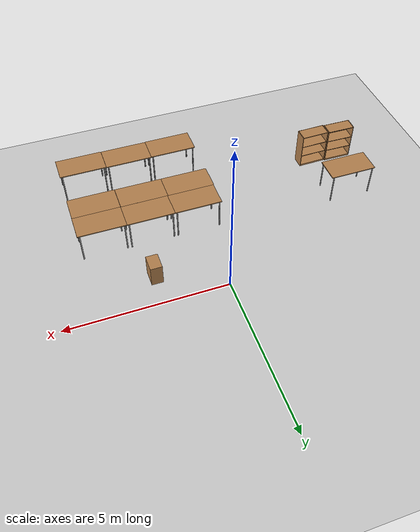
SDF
<sdf version="1.4">
 <world name="default">
  <model name="ground_plane">
   <static>1</static>
   <link name="link">
    <collision name="collision">
     <geometry><plane><normal>0 0 1</normal><size>100 100</size></plane></geometry>
     <surface><friction><ode><mu>100</mu><mu2>50</mu2></ode></friction></surface>
    </collision>
    <visual name="visual">
     <cast_shadows>0</cast_shadows>
     <geometry><plane><normal>0 0 1</normal><size>100 100</size></plane></geometry>
     <material>
      <script><uri>file://media/materials/scripts/gazebo.material</uri><name>Gazebo/Grey</name></script>
     </material>
    </visual>
    <velocity_decay><linear>0</linear><angular>0</angular></velocity_decay>
   </link>
  </model>
  <model name="bookshelf">
   <static>1</static>
   <link name="link">
    <inertial><mass>1</mass></inertial>
    <collision name="back">
     <pose>0 0.005 0.6 0 -0 0</pose>
     <geometry><box><size>0.9 0.01 1.2</size></box></geometry>
    </collision>
    <visual name="visual1">
     <pose>0 0.005 0.6 0 -0 0</pose>
     <geometry><box><size>0.9 0.01 1.2</size></box></geometry>
     <material>
      <script><uri>file://media/materials/scripts/gazebo.material</uri><name>Gazebo/Wood</name></script>
     </material>
    </visual>
    <collision name="left_side">
     <pose>0.45 -0.195 0.6 0 -0 0</pose>
     <geometry><box><size>0.02 0.4 1.2</size></box></geometry>
    </collision>
    <visual name="visual2">
     <pose>0.45 -0.195 0.6 0 -0 0</pose>
     <geometry><box><size>0.02 0.4 1.2</size></box></geometry>
     <material>
      <script><uri>file://media/materials/scripts/gazebo.material</uri><name>Gazebo/Wood</name></script>
     </material>
    </visual>
    <collision name="right_side">
     <pose>-0.45 -0.195 0.6 0 -0 0</pose>
     <geometry><box><size>0.02 0.4 1.2</size></box></geometry>
    </collision>
    <visual name="visual3">
     <pose>-0.45 -0.195 0.6 0 -0 0</pose>
     <geometry><box><size>0.02 0.4 1.2</size></box></geometry>
     <material>
      <script><uri>file://media/materials/scripts/gazebo.material</uri><name>Gazebo/Wood</name></script>
     </material>
    </visual>
    <collision name="bottom">
     <pose>0 -0.195 0.03 0 -0 0</pose>
     <geometry><box><size>0.88 0.4 0.06</size></box></geometry>
    </collision>
    <visual name="visual4">
     <pose>0 -0.195 0.03 0 -0 0</pose>
     <geometry><box><size>0.88 0.4 0.06</size></box></geometry>
     <material>
      <script><uri>file://media/materials/scripts/gazebo.material</uri><name>Gazebo/Wood</name></script>
     </material>
    </visual>
    <collision name="top">
     <pose>0 -0.195 1.19 0 -0 0</pose>
     <geometry><box><size>0.88 0.4 0.02</size></box></geometry>
    </collision>
    <visual name="visual5">
     <pose>0 -0.195 1.19 0 -0 0</pose>
     <geometry><box><size>0.88 0.4 0.02</size></box></geometry>
     <material>
      <script><uri>file://media/materials/scripts/gazebo.material</uri><name>Gazebo/Wood</name></script>
     </material>
    </visual>
    <collision name="low_shelf">
     <pose>0 -0.195 0.43 0 -0 0</pose>
     <geometry><box><size>0.88 0.4 0.02</size></box></geometry>
    </collision>
    <visual name="visual6">
     <pose>0 -0.195 0.43 0 -0 0</pose>
     <geometry><box><size>0.88 0.4 0.02</size></box></geometry>
     <material>
      <script><uri>file://media/materials/scripts/gazebo.material</uri><name>Gazebo/Wood</name></script>
     </material>
    </visual>
    <collision name="high_shelf">
     <pose>0 -0.195 0.8 0 -0 0</pose>
     <geometry><box><size>0.88 0.4 0.02</size></box></geometry>
    </collision>
    <visual name="visual7">
     <pose>0 -0.195 0.8 0 -0 0</pose>
     <geometry><box><size>0.88 0.4 0.02</size></box></geometry>
     <material>
      <script><uri>file://media/materials/scripts/gazebo.material</uri><name>Gazebo/Wood</name></script>
     </material>
    </visual>
    <velocity_decay><linear>0</linear><angular>0</angular></velocity_decay>
   </link>
   <pose>-5.47897 -4.4727 0 0 -0 3.12502</pose>
  </model>
  <model name="bookshelf_0">
   <static>1</static>
   <link name="link">
    <inertial><mass>1</mass></inertial>
    <collision name="back">
     <pose>0 0.005 0.6 0 -0 0</pose>
     <geometry><box><size>0.9 0.01 1.2</size></box></geometry>
    </collision>
    <visual name="visual1">
     <pose>0 0.005 0.6 0 -0 0</pose>
     <geometry><box><size>0.9 0.01 1.2</size></box></geometry>
     <material>
      <script><uri>file://media/materials/scripts/gazebo.material</uri><name>Gazebo/Wood</name></script>
     </material>
    </visual>
    <collision name="left_side">
     <pose>0.45 -0.195 0.6 0 -0 0</pose>
     <geometry><box><size>0.02 0.4 1.2</size></box></geometry>
    </collision>
    <visual name="visual2">
     <pose>0.45 -0.195 0.6 0 -0 0</pose>
     <geometry><box><size>0.02 0.4 1.2</size></box></geometry>
     <material>
      <script><uri>file://media/materials/scripts/gazebo.material</uri><name>Gazebo/Wood</name></script>
     </material>
    </visual>
    <collision name="right_side">
     <pose>-0.45 -0.195 0.6 0 -0 0</pose>
     <geometry><box><size>0.02 0.4 1.2</size></box></geometry>
    </collision>
    <visual name="visual3">
     <pose>-0.45 -0.195 0.6 0 -0 0</pose>
     <geometry><box><size>0.02 0.4 1.2</size></box></geometry>
     <material>
      <script><uri>file://media/materials/scripts/gazebo.material</uri><name>Gazebo/Wood</name></script>
     </material>
    </visual>
    <collision name="bottom">
     <pose>0 -0.195 0.03 0 -0 0</pose>
     <geometry><box><size>0.88 0.4 0.06</size></box></geometry>
    </collision>
    <visual name="visual4">
     <pose>0 -0.195 0.03 0 -0 0</pose>
     <geometry><box><size>0.88 0.4 0.06</size></box></geometry>
     <material>
      <script><uri>file://media/materials/scripts/gazebo.material</uri><name>Gazebo/Wood</name></script>
     </material>
    </visual>
    <collision name="top">
     <pose>0 -0.195 1.19 0 -0 0</pose>
     <geometry><box><size>0.88 0.4 0.02</size></box></geometry>
    </collision>
    <visual name="visual5">
     <pose>0 -0.195 1.19 0 -0 0</pose>
     <geometry><box><size>0.88 0.4 0.02</size></box></geometry>
     <material>
      <script><uri>file://media/materials/scripts/gazebo.material</uri><name>Gazebo/Wood</name></script>
     </material>
    </visual>
    <collision name="low_shelf">
     <pose>0 -0.195 0.43 0 -0 0</pose>
     <geometry><box><size>0.88 0.4 0.02</size></box></geometry>
    </collision>
    <visual name="visual6">
     <pose>0 -0.195 0.43 0 -0 0</pose>
     <geometry><box><size>0.88 0.4 0.02</size></box></geometry>
     <material>
      <script><uri>file://media/materials/scripts/gazebo.material</uri><name>Gazebo/Wood</name></script>
     </material>
    </visual>
    <collision name="high_shelf">
     <pose>0 -0.195 0.8 0 -0 0</pose>
     <geometry><box><size>0.88 0.4 0.02</size></box></geometry>
    </collision>
    <visual name="visual7">
     <pose>0 -0.195 0.8 0 -0 0</pose>
     <geometry><box><size>0.88 0.4 0.02</size></box></geometry>
     <material>
      <script><uri>file://media/materials/scripts/gazebo.material</uri><name>Gazebo/Wood</name></script>
     </material>
    </visual>
    <velocity_decay><linear>0</linear><angular>0</angular></velocity_decay>
   </link>
   <pose>-4.5364 -4.49607 0 0 0 -3.12092</pose>
  </model>
  <model name="table">
   <static>1</static>
   <link name="link">
    <collision name="surface">
     <pose>0 0 1 0 -0 0</pose>
     <geometry><box><size>1.5 0.8 0.03</size></box></geometry>
     <surface><friction><ode><mu>0.6</mu><mu2>0.6</mu2></ode></friction></surface>
    </collision>
    <visual name="visual1">
     <pose>0 0 1 0 -0 0</pose>
     <geometry><box><size>1.5 0.8 0.03</size></box></geometry>
     <material>
      <script><uri>file://media/materials/scripts/gazebo.material</uri><name>Gazebo/Wood</name></script>
     </material>
    </visual>
    <collision name="front_left_leg">
     <pose>0.68 0.38 0.5 0 -0 0</pose>
     <geometry><cylinder><radius>0.02</radius><length>1</length></cylinder></geometry>
    </collision>
    <visual name="front_left_leg">
     <pose>0.68 0.38 0.5 0 -0 0</pose>
     <geometry><cylinder><radius>0.02</radius><length>1</length></cylinder></geometry>
     <material>
      <script><uri>file://media/materials/scripts/gazebo.material</uri><name>Gazebo/Grey</name></script>
     </material>
    </visual>
    <collision name="front_right_leg">
     <pose>0.68 -0.38 0.5 0 -0 0</pose>
     <geometry><cylinder><radius>0.02</radius><length>1</length></cylinder></geometry>
    </collision>
    <visual name="front_right_leg">
     <pose>0.68 -0.38 0.5 0 -0 0</pose>
     <geometry><cylinder><radius>0.02</radius><length>1</length></cylinder></geometry>
     <material>
      <script><uri>file://media/materials/scripts/gazebo.material</uri><name>Gazebo/Grey</name></script>
     </material>
    </visual>
    <collision name="back_right_leg">
     <pose>-0.68 -0.38 0.5 0 -0 0</pose>
     <geometry><cylinder><radius>0.02</radius><length>1</length></cylinder></geometry>
    </collision>
    <visual name="back_right_leg">
     <pose>-0.68 -0.38 0.5 0 -0 0</pose>
     <geometry><cylinder><radius>0.02</radius><length>1</length></cylinder></geometry>
     <material>
      <script><uri>file://media/materials/scripts/gazebo.material</uri><name>Gazebo/Grey</name></script>
     </material>
    </visual>
    <collision name="back_left_leg">
     <pose>-0.68 0.38 0.5 0 -0 0</pose>
     <geometry><cylinder><radius>0.02</radius><length>1</length></cylinder></geometry>
    </collision>
    <visual name="back_left_leg">
     <pose>-0.68 0.38 0.5 0 -0 0</pose>
     <geometry><cylinder><radius>0.02</radius><length>1</length></cylinder></geometry>
     <material>
      <script><uri>file://media/materials/scripts/gazebo.material</uri><name>Gazebo/Grey</name></script>
     </material>
    </visual>
    <velocity_decay><linear>0</linear><angular>0</angular></velocity_decay>
   </link>
   <pose>3.14958 -3.576 0 0 -0 0</pose>
  </model>
  <model name="table_0">
   <static>1</static>
   <link name="link">
    <collision name="surface">
     <pose>0 0 1 0 -0 0</pose>
     <geometry><box><size>1.5 0.8 0.03</size></box></geometry>
     <surface><friction><ode><mu>0.6</mu><mu2>0.6</mu2></ode></friction></surface>
    </collision>
    <visual name="visual1">
     <pose>0 0 1 0 -0 0</pose>
     <geometry><box><size>1.5 0.8 0.03</size></box></geometry>
     <material>
      <script><uri>file://media/materials/scripts/gazebo.material</uri><name>Gazebo/Wood</name></script>
     </material>
    </visual>
    <collision name="front_left_leg">
     <pose>0.68 0.38 0.5 0 -0 0</pose>
     <geometry><cylinder><radius>0.02</radius><length>1</length></cylinder></geometry>
    </collision>
    <visual name="front_left_leg">
     <pose>0.68 0.38 0.5 0 -0 0</pose>
     <geometry><cylinder><radius>0.02</radius><length>1</length></cylinder></geometry>
     <material>
      <script><uri>file://media/materials/scripts/gazebo.material</uri><name>Gazebo/Grey</name></script>
     </material>
    </visual>
    <collision name="front_right_leg">
     <pose>0.68 -0.38 0.5 0 -0 0</pose>
     <geometry><cylinder><radius>0.02</radius><length>1</length></cylinder></geometry>
    </collision>
    <visual name="front_right_leg">
     <pose>0.68 -0.38 0.5 0 -0 0</pose>
     <geometry><cylinder><radius>0.02</radius><length>1</length></cylinder></geometry>
     <material>
      <script><uri>file://media/materials/scripts/gazebo.material</uri><name>Gazebo/Grey</name></script>
     </material>
    </visual>
    <collision name="back_right_leg">
     <pose>-0.68 -0.38 0.5 0 -0 0</pose>
     <geometry><cylinder><radius>0.02</radius><length>1</length></cylinder></geometry>
    </collision>
    <visual name="back_right_leg">
     <pose>-0.68 -0.38 0.5 0 -0 0</pose>
     <geometry><cylinder><radius>0.02</radius><length>1</length></cylinder></geometry>
     <material>
      <script><uri>file://media/materials/scripts/gazebo.material</uri><name>Gazebo/Grey</name></script>
     </material>
    </visual>
    <collision name="back_left_leg">
     <pose>-0.68 0.38 0.5 0 -0 0</pose>
     <geometry><cylinder><radius>0.02</radius><length>1</length></cylinder></geometry>
    </collision>
    <visual name="back_left_leg">
     <pose>-0.68 0.38 0.5 0 -0 0</pose>
     <geometry><cylinder><radius>0.02</radius><length>1</length></cylinder></geometry>
     <material>
      <script><uri>file://media/materials/scripts/gazebo.material</uri><name>Gazebo/Grey</name></script>
     </material>
    </visual>
    <velocity_decay><linear>0</linear><angular>0</angular></velocity_decay>
   </link>
   <pose>3.15246 -2.77618 0 0 -0 0</pose>
  </model>
  <model name="table_1">
   <static>1</static>
   <link name="link">
    <collision name="surface">
     <pose>0 0 1 0 -0 0</pose>
     <geometry><box><size>1.5 0.8 0.03</size></box></geometry>
     <surface><friction><ode><mu>0.6</mu><mu2>0.6</mu2></ode></friction></surface>
    </collision>
    <visual name="visual1">
     <pose>0 0 1 0 -0 0</pose>
     <geometry><box><size>1.5 0.8 0.03</size></box></geometry>
     <material>
      <script><uri>file://media/materials/scripts/gazebo.material</uri><name>Gazebo/Wood</name></script>
     </material>
    </visual>
    <collision name="front_left_leg">
     <pose>0.68 0.38 0.5 0 -0 0</pose>
     <geometry><cylinder><radius>0.02</radius><length>1</length></cylinder></geometry>
    </collision>
    <visual name="front_left_leg">
     <pose>0.68 0.38 0.5 0 -0 0</pose>
     <geometry><cylinder><radius>0.02</radius><length>1</length></cylinder></geometry>
     <material>
      <script><uri>file://media/materials/scripts/gazebo.material</uri><name>Gazebo/Grey</name></script>
     </material>
    </visual>
    <collision name="front_right_leg">
     <pose>0.68 -0.38 0.5 0 -0 0</pose>
     <geometry><cylinder><radius>0.02</radius><length>1</length></cylinder></geometry>
    </collision>
    <visual name="front_right_leg">
     <pose>0.68 -0.38 0.5 0 -0 0</pose>
     <geometry><cylinder><radius>0.02</radius><length>1</length></cylinder></geometry>
     <material>
      <script><uri>file://media/materials/scripts/gazebo.material</uri><name>Gazebo/Grey</name></script>
     </material>
    </visual>
    <collision name="back_right_leg">
     <pose>-0.68 -0.38 0.5 0 -0 0</pose>
     <geometry><cylinder><radius>0.02</radius><length>1</length></cylinder></geometry>
    </collision>
    <visual name="back_right_leg">
     <pose>-0.68 -0.38 0.5 0 -0 0</pose>
     <geometry><cylinder><radius>0.02</radius><length>1</length></cylinder></geometry>
     <material>
      <script><uri>file://media/materials/scripts/gazebo.material</uri><name>Gazebo/Grey</name></script>
     </material>
    </visual>
    <collision name="back_left_leg">
     <pose>-0.68 0.38 0.5 0 -0 0</pose>
     <geometry><cylinder><radius>0.02</radius><length>1</length></cylinder></geometry>
    </collision>
    <visual name="back_left_leg">
     <pose>-0.68 0.38 0.5 0 -0 0</pose>
     <geometry><cylinder><radius>0.02</radius><length>1</length></cylinder></geometry>
     <material>
      <script><uri>file://media/materials/scripts/gazebo.material</uri><name>Gazebo/Grey</name></script>
     </material>
    </visual>
    <velocity_decay><linear>0</linear><angular>0</angular></velocity_decay>
   </link>
   <pose>1.64385 -3.57049 0 0 -0 0</pose>
  </model>
  <model name="table_2">
   <static>1</static>
   <link name="link">
    <collision name="surface">
     <pose>0 0 1 0 -0 0</pose>
     <geometry><box><size>1.5 0.8 0.03</size></box></geometry>
     <surface><friction><ode><mu>0.6</mu><mu2>0.6</mu2></ode></friction></surface>
    </collision>
    <visual name="visual1">
     <pose>0 0 1 0 -0 0</pose>
     <geometry><box><size>1.5 0.8 0.03</size></box></geometry>
     <material>
      <script><uri>file://media/materials/scripts/gazebo.material</uri><name>Gazebo/Wood</name></script>
     </material>
    </visual>
    <collision name="front_left_leg">
     <pose>0.68 0.38 0.5 0 -0 0</pose>
     <geometry><cylinder><radius>0.02</radius><length>1</length></cylinder></geometry>
    </collision>
    <visual name="front_left_leg">
     <pose>0.68 0.38 0.5 0 -0 0</pose>
     <geometry><cylinder><radius>0.02</radius><length>1</length></cylinder></geometry>
     <material>
      <script><uri>file://media/materials/scripts/gazebo.material</uri><name>Gazebo/Grey</name></script>
     </material>
    </visual>
    <collision name="front_right_leg">
     <pose>0.68 -0.38 0.5 0 -0 0</pose>
     <geometry><cylinder><radius>0.02</radius><length>1</length></cylinder></geometry>
    </collision>
    <visual name="front_right_leg">
     <pose>0.68 -0.38 0.5 0 -0 0</pose>
     <geometry><cylinder><radius>0.02</radius><length>1</length></cylinder></geometry>
     <material>
      <script><uri>file://media/materials/scripts/gazebo.material</uri><name>Gazebo/Grey</name></script>
     </material>
    </visual>
    <collision name="back_right_leg">
     <pose>-0.68 -0.38 0.5 0 -0 0</pose>
     <geometry><cylinder><radius>0.02</radius><length>1</length></cylinder></geometry>
    </collision>
    <visual name="back_right_leg">
     <pose>-0.68 -0.38 0.5 0 -0 0</pose>
     <geometry><cylinder><radius>0.02</radius><length>1</length></cylinder></geometry>
     <material>
      <script><uri>file://media/materials/scripts/gazebo.material</uri><name>Gazebo/Grey</name></script>
     </material>
    </visual>
    <collision name="back_left_leg">
     <pose>-0.68 0.38 0.5 0 -0 0</pose>
     <geometry><cylinder><radius>0.02</radius><length>1</length></cylinder></geometry>
    </collision>
    <visual name="back_left_leg">
     <pose>-0.68 0.38 0.5 0 -0 0</pose>
     <geometry><cylinder><radius>0.02</radius><length>1</length></cylinder></geometry>
     <material>
      <script><uri>file://media/materials/scripts/gazebo.material</uri><name>Gazebo/Grey</name></script>
     </material>
    </visual>
    <velocity_decay><linear>0</linear><angular>0</angular></velocity_decay>
   </link>
   <pose>1.65761 -2.77009 0 0 -0 0</pose>
  </model>
  <model name="table_3">
   <static>1</static>
   <link name="link">
    <collision name="surface">
     <pose>0 0 1 0 -0 0</pose>
     <geometry><box><size>1.5 0.8 0.03</size></box></geometry>
     <surface><friction><ode><mu>0.6</mu><mu2>0.6</mu2></ode></friction></surface>
    </collision>
    <visual name="visual1">
     <pose>0 0 1 0 -0 0</pose>
     <geometry><box><size>1.5 0.8 0.03</size></box></geometry>
     <material>
      <script><uri>file://media/materials/scripts/gazebo.material</uri><name>Gazebo/Wood</name></script>
     </material>
    </visual>
    <collision name="front_left_leg">
     <pose>0.68 0.38 0.5 0 -0 0</pose>
     <geometry><cylinder><radius>0.02</radius><length>1</length></cylinder></geometry>
    </collision>
    <visual name="front_left_leg">
     <pose>0.68 0.38 0.5 0 -0 0</pose>
     <geometry><cylinder><radius>0.02</radius><length>1</length></cylinder></geometry>
     <material>
      <script><uri>file://media/materials/scripts/gazebo.material</uri><name>Gazebo/Grey</name></script>
     </material>
    </visual>
    <collision name="front_right_leg">
     <pose>0.68 -0.38 0.5 0 -0 0</pose>
     <geometry><cylinder><radius>0.02</radius><length>1</length></cylinder></geometry>
    </collision>
    <visual name="front_right_leg">
     <pose>0.68 -0.38 0.5 0 -0 0</pose>
     <geometry><cylinder><radius>0.02</radius><length>1</length></cylinder></geometry>
     <material>
      <script><uri>file://media/materials/scripts/gazebo.material</uri><name>Gazebo/Grey</name></script>
     </material>
    </visual>
    <collision name="back_right_leg">
     <pose>-0.68 -0.38 0.5 0 -0 0</pose>
     <geometry><cylinder><radius>0.02</radius><length>1</length></cylinder></geometry>
    </collision>
    <visual name="back_right_leg">
     <pose>-0.68 -0.38 0.5 0 -0 0</pose>
     <geometry><cylinder><radius>0.02</radius><length>1</length></cylinder></geometry>
     <material>
      <script><uri>file://media/materials/scripts/gazebo.material</uri><name>Gazebo/Grey</name></script>
     </material>
    </visual>
    <collision name="back_left_leg">
     <pose>-0.68 0.38 0.5 0 -0 0</pose>
     <geometry><cylinder><radius>0.02</radius><length>1</length></cylinder></geometry>
    </collision>
    <visual name="back_left_leg">
     <pose>-0.68 0.38 0.5 0 -0 0</pose>
     <geometry><cylinder><radius>0.02</radius><length>1</length></cylinder></geometry>
     <material>
      <script><uri>file://media/materials/scripts/gazebo.material</uri><name>Gazebo/Grey</name></script>
     </material>
    </visual>
    <velocity_decay><linear>0</linear><angular>0</angular></velocity_decay>
   </link>
   <pose>0.147691 -3.56685 0 0 -0 0</pose>
  </model>
  <model name="table_4">
   <static>1</static>
   <link name="link">
    <collision name="surface">
     <pose>0 0 1 0 -0 0</pose>
     <geometry><box><size>1.5 0.8 0.03</size></box></geometry>
     <surface><friction><ode><mu>0.6</mu><mu2>0.6</mu2></ode></friction></surface>
    </collision>
    <visual name="visual1">
     <pose>0 0 1 0 -0 0</pose>
     <geometry><box><size>1.5 0.8 0.03</size></box></geometry>
     <material>
      <script><uri>file://media/materials/scripts/gazebo.material</uri><name>Gazebo/Wood</name></script>
     </material>
    </visual>
    <collision name="front_left_leg">
     <pose>0.68 0.38 0.5 0 -0 0</pose>
     <geometry><cylinder><radius>0.02</radius><length>1</length></cylinder></geometry>
    </collision>
    <visual name="front_left_leg">
     <pose>0.68 0.38 0.5 0 -0 0</pose>
     <geometry><cylinder><radius>0.02</radius><length>1</length></cylinder></geometry>
     <material>
      <script><uri>file://media/materials/scripts/gazebo.material</uri><name>Gazebo/Grey</name></script>
     </material>
    </visual>
    <collision name="front_right_leg">
     <pose>0.68 -0.38 0.5 0 -0 0</pose>
     <geometry><cylinder><radius>0.02</radius><length>1</length></cylinder></geometry>
    </collision>
    <visual name="front_right_leg">
     <pose>0.68 -0.38 0.5 0 -0 0</pose>
     <geometry><cylinder><radius>0.02</radius><length>1</length></cylinder></geometry>
     <material>
      <script><uri>file://media/materials/scripts/gazebo.material</uri><name>Gazebo/Grey</name></script>
     </material>
    </visual>
    <collision name="back_right_leg">
     <pose>-0.68 -0.38 0.5 0 -0 0</pose>
     <geometry><cylinder><radius>0.02</radius><length>1</length></cylinder></geometry>
    </collision>
    <visual name="back_right_leg">
     <pose>-0.68 -0.38 0.5 0 -0 0</pose>
     <geometry><cylinder><radius>0.02</radius><length>1</length></cylinder></geometry>
     <material>
      <script><uri>file://media/materials/scripts/gazebo.material</uri><name>Gazebo/Grey</name></script>
     </material>
    </visual>
    <collision name="back_left_leg">
     <pose>-0.68 0.38 0.5 0 -0 0</pose>
     <geometry><cylinder><radius>0.02</radius><length>1</length></cylinder></geometry>
    </collision>
    <visual name="back_left_leg">
     <pose>-0.68 0.38 0.5 0 -0 0</pose>
     <geometry><cylinder><radius>0.02</radius><length>1</length></cylinder></geometry>
     <material>
      <script><uri>file://media/materials/scripts/gazebo.material</uri><name>Gazebo/Grey</name></script>
     </material>
    </visual>
    <velocity_decay><linear>0</linear><angular>0</angular></velocity_decay>
   </link>
   <pose>0.166165 -2.77151 0 0 -0 0</pose>
  </model>
  <model name="table_5">
   <static>1</static>
   <link name="link">
    <collision name="surface">
     <pose>0 0 1 0 -0 0</pose>
     <geometry><box><size>1.5 0.8 0.03</size></box></geometry>
     <surface><friction><ode><mu>0.6</mu><mu2>0.6</mu2></ode></friction></surface>
    </collision>
    <visual name="visual1">
     <pose>0 0 1 0 -0 0</pose>
     <geometry><box><size>1.5 0.8 0.03</size></box></geometry>
     <material>
      <script><uri>file://media/materials/scripts/gazebo.material</uri><name>Gazebo/Wood</name></script>
     </material>
    </visual>
    <collision name="front_left_leg">
     <pose>0.68 0.38 0.5 0 -0 0</pose>
     <geometry><cylinder><radius>0.02</radius><length>1</length></cylinder></geometry>
    </collision>
    <visual name="front_left_leg">
     <pose>0.68 0.38 0.5 0 -0 0</pose>
     <geometry><cylinder><radius>0.02</radius><length>1</length></cylinder></geometry>
     <material>
      <script><uri>file://media/materials/scripts/gazebo.material</uri><name>Gazebo/Grey</name></script>
     </material>
    </visual>
    <collision name="front_right_leg">
     <pose>0.68 -0.38 0.5 0 -0 0</pose>
     <geometry><cylinder><radius>0.02</radius><length>1</length></cylinder></geometry>
    </collision>
    <visual name="front_right_leg">
     <pose>0.68 -0.38 0.5 0 -0 0</pose>
     <geometry><cylinder><radius>0.02</radius><length>1</length></cylinder></geometry>
     <material>
      <script><uri>file://media/materials/scripts/gazebo.material</uri><name>Gazebo/Grey</name></script>
     </material>
    </visual>
    <collision name="back_right_leg">
     <pose>-0.68 -0.38 0.5 0 -0 0</pose>
     <geometry><cylinder><radius>0.02</radius><length>1</length></cylinder></geometry>
    </collision>
    <visual name="back_right_leg">
     <pose>-0.68 -0.38 0.5 0 -0 0</pose>
     <geometry><cylinder><radius>0.02</radius><length>1</length></cylinder></geometry>
     <material>
      <script><uri>file://media/materials/scripts/gazebo.material</uri><name>Gazebo/Grey</name></script>
     </material>
    </visual>
    <collision name="back_left_leg">
     <pose>-0.68 0.38 0.5 0 -0 0</pose>
     <geometry><cylinder><radius>0.02</radius><length>1</length></cylinder></geometry>
    </collision>
    <visual name="back_left_leg">
     <pose>-0.68 0.38 0.5 0 -0 0</pose>
     <geometry><cylinder><radius>0.02</radius><length>1</length></cylinder></geometry>
     <material>
      <script><uri>file://media/materials/scripts/gazebo.material</uri><name>Gazebo/Grey</name></script>
     </material>
    </visual>
    <velocity_decay><linear>0</linear><angular>0</angular></velocity_decay>
   </link>
   <pose>3.13696 -5.4898 0 0 -0 0</pose>
  </model>
  <model name="table_6">
   <static>1</static>
   <link name="link">
    <collision name="surface">
     <pose>0 0 1 0 -0 0</pose>
     <geometry><box><size>1.5 0.8 0.03</size></box></geometry>
     <surface><friction><ode><mu>0.6</mu><mu2>0.6</mu2></ode></friction></surface>
    </collision>
    <visual name="visual1">
     <pose>0 0 1 0 -0 0</pose>
     <geometry><box><size>1.5 0.8 0.03</size></box></geometry>
     <material>
      <script><uri>file://media/materials/scripts/gazebo.material</uri><name>Gazebo/Wood</name></script>
     </material>
    </visual>
    <collision name="front_left_leg">
     <pose>0.68 0.38 0.5 0 -0 0</pose>
     <geometry><cylinder><radius>0.02</radius><length>1</length></cylinder></geometry>
    </collision>
    <visual name="front_left_leg">
     <pose>0.68 0.38 0.5 0 -0 0</pose>
     <geometry><cylinder><radius>0.02</radius><length>1</length></cylinder></geometry>
     <material>
      <script><uri>file://media/materials/scripts/gazebo.material</uri><name>Gazebo/Grey</name></script>
     </material>
    </visual>
    <collision name="front_right_leg">
     <pose>0.68 -0.38 0.5 0 -0 0</pose>
     <geometry><cylinder><radius>0.02</radius><length>1</length></cylinder></geometry>
    </collision>
    <visual name="front_right_leg">
     <pose>0.68 -0.38 0.5 0 -0 0</pose>
     <geometry><cylinder><radius>0.02</radius><length>1</length></cylinder></geometry>
     <material>
      <script><uri>file://media/materials/scripts/gazebo.material</uri><name>Gazebo/Grey</name></script>
     </material>
    </visual>
    <collision name="back_right_leg">
     <pose>-0.68 -0.38 0.5 0 -0 0</pose>
     <geometry><cylinder><radius>0.02</radius><length>1</length></cylinder></geometry>
    </collision>
    <visual name="back_right_leg">
     <pose>-0.68 -0.38 0.5 0 -0 0</pose>
     <geometry><cylinder><radius>0.02</radius><length>1</length></cylinder></geometry>
     <material>
      <script><uri>file://media/materials/scripts/gazebo.material</uri><name>Gazebo/Grey</name></script>
     </material>
    </visual>
    <collision name="back_left_leg">
     <pose>-0.68 0.38 0.5 0 -0 0</pose>
     <geometry><cylinder><radius>0.02</radius><length>1</length></cylinder></geometry>
    </collision>
    <visual name="back_left_leg">
     <pose>-0.68 0.38 0.5 0 -0 0</pose>
     <geometry><cylinder><radius>0.02</radius><length>1</length></cylinder></geometry>
     <material>
      <script><uri>file://media/materials/scripts/gazebo.material</uri><name>Gazebo/Grey</name></script>
     </material>
    </visual>
    <velocity_decay><linear>0</linear><angular>0</angular></velocity_decay>
   </link>
   <pose>1.63488 -5.47778 0 0 -0 0</pose>
  </model>
  <model name="table_7">
   <static>1</static>
   <link name="link">
    <collision name="surface">
     <pose>0 0 1 0 -0 0</pose>
     <geometry><box><size>1.5 0.8 0.03</size></box></geometry>
     <surface><friction><ode><mu>0.6</mu><mu2>0.6</mu2></ode></friction></surface>
    </collision>
    <visual name="visual1">
     <pose>0 0 1 0 -0 0</pose>
     <geometry><box><size>1.5 0.8 0.03</size></box></geometry>
     <material>
      <script><uri>file://media/materials/scripts/gazebo.material</uri><name>Gazebo/Wood</name></script>
     </material>
    </visual>
    <collision name="front_left_leg">
     <pose>0.68 0.38 0.5 0 -0 0</pose>
     <geometry><cylinder><radius>0.02</radius><length>1</length></cylinder></geometry>
    </collision>
    <visual name="front_left_leg">
     <pose>0.68 0.38 0.5 0 -0 0</pose>
     <geometry><cylinder><radius>0.02</radius><length>1</length></cylinder></geometry>
     <material>
      <script><uri>file://media/materials/scripts/gazebo.material</uri><name>Gazebo/Grey</name></script>
     </material>
    </visual>
    <collision name="front_right_leg">
     <pose>0.68 -0.38 0.5 0 -0 0</pose>
     <geometry><cylinder><radius>0.02</radius><length>1</length></cylinder></geometry>
    </collision>
    <visual name="front_right_leg">
     <pose>0.68 -0.38 0.5 0 -0 0</pose>
     <geometry><cylinder><radius>0.02</radius><length>1</length></cylinder></geometry>
     <material>
      <script><uri>file://media/materials/scripts/gazebo.material</uri><name>Gazebo/Grey</name></script>
     </material>
    </visual>
    <collision name="back_right_leg">
     <pose>-0.68 -0.38 0.5 0 -0 0</pose>
     <geometry><cylinder><radius>0.02</radius><length>1</length></cylinder></geometry>
    </collision>
    <visual name="back_right_leg">
     <pose>-0.68 -0.38 0.5 0 -0 0</pose>
     <geometry><cylinder><radius>0.02</radius><length>1</length></cylinder></geometry>
     <material>
      <script><uri>file://media/materials/scripts/gazebo.material</uri><name>Gazebo/Grey</name></script>
     </material>
    </visual>
    <collision name="back_left_leg">
     <pose>-0.68 0.38 0.5 0 -0 0</pose>
     <geometry><cylinder><radius>0.02</radius><length>1</length></cylinder></geometry>
    </collision>
    <visual name="back_left_leg">
     <pose>-0.68 0.38 0.5 0 -0 0</pose>
     <geometry><cylinder><radius>0.02</radius><length>1</length></cylinder></geometry>
     <material>
      <script><uri>file://media/materials/scripts/gazebo.material</uri><name>Gazebo/Grey</name></script>
     </material>
    </visual>
    <velocity_decay><linear>0</linear><angular>0</angular></velocity_decay>
   </link>
   <pose>0.143295 -5.48733 0 0 -0 0</pose>
  </model>
  <model name="table_15">
   <static>1</static>
   <link name="link">
    <collision name="surface">
     <pose>0 0 1 0 -0 0</pose>
     <geometry><box><size>1.5 0.8 0.03</size></box></geometry>
     <surface><friction><ode><mu>0.6</mu><mu2>0.6</mu2></ode></friction></surface>
    </collision>
    <visual name="visual1">
     <pose>0 0 1 0 -0 0</pose>
     <geometry><box><size>1.5 0.8 0.03</size></box></geometry>
     <material>
      <script><uri>file://media/materials/scripts/gazebo.material</uri><name>Gazebo/Wood</name></script>
     </material>
    </visual>
    <collision name="front_left_leg">
     <pose>0.68 0.38 0.5 0 -0 0</pose>
     <geometry><cylinder><radius>0.02</radius><length>1</length></cylinder></geometry>
    </collision>
    <visual name="front_left_leg">
     <pose>0.68 0.38 0.5 0 -0 0</pose>
     <geometry><cylinder><radius>0.02</radius><length>1</length></cylinder></geometry>
     <material>
      <script><uri>file://media/materials/scripts/gazebo.material</uri><name>Gazebo/Grey</name></script>
     </material>
    </visual>
    <collision name="front_right_leg">
     <pose>0.68 -0.38 0.5 0 -0 0</pose>
     <geometry><cylinder><radius>0.02</radius><length>1</length></cylinder></geometry>
    </collision>
    <visual name="front_right_leg">
     <pose>0.68 -0.38 0.5 0 -0 0</pose>
     <geometry><cylinder><radius>0.02</radius><length>1</length></cylinder></geometry>
     <material>
      <script><uri>file://media/materials/scripts/gazebo.material</uri><name>Gazebo/Grey</name></script>
     </material>
    </visual>
    <collision name="back_right_leg">
     <pose>-0.68 -0.38 0.5 0 -0 0</pose>
     <geometry><cylinder><radius>0.02</radius><length>1</length></cylinder></geometry>
    </collision>
    <visual name="back_right_leg">
     <pose>-0.68 -0.38 0.5 0 -0 0</pose>
     <geometry><cylinder><radius>0.02</radius><length>1</length></cylinder></geometry>
     <material>
      <script><uri>file://media/materials/scripts/gazebo.material</uri><name>Gazebo/Grey</name></script>
     </material>
    </visual>
    <collision name="back_left_leg">
     <pose>-0.68 0.38 0.5 0 -0 0</pose>
     <geometry><cylinder><radius>0.02</radius><length>1</length></cylinder></geometry>
    </collision>
    <visual name="back_left_leg">
     <pose>-0.68 0.38 0.5 0 -0 0</pose>
     <geometry><cylinder><radius>0.02</radius><length>1</length></cylinder></geometry>
     <material>
      <script><uri>file://media/materials/scripts/gazebo.material</uri><name>Gazebo/Grey</name></script>
     </material>
    </visual>
    <velocity_decay><linear>0</linear><angular>0</angular></velocity_decay>
   </link>
   <pose>-5 -2.59332 0 0 -0 0</pose>
  </model>
  <model name="unit_box_1">
   <pose>2 -1 0.348548 1e-06 1e-06 4e-06</pose>
   <link name="link">
    <inertial>
     <mass>1</mass>
     <inertia><ixx>1</ixx><ixy>0</ixy><ixz>0</ixz><iyy>1</iyy><iyz>0</iyz><izz>1</izz></inertia>
    </inertial>
    <collision name="collision">
     <geometry><box><size>0.364208 0.516359 0.697097</size></box></geometry>
    </collision>
    <visual name="visual">
     <geometry><box><size>0.364208 0.516359 0.697097</size></box></geometry>
     <material>
      <script><uri>file://media/materials/scripts/gazebo.material</uri><name>Gazebo/Wood</name></script>
     </material>
    </visual>
    <velocity_decay><linear>0</linear><angular>0</angular></velocity_decay>
   </link>
   <static>0</static>
  </model>
 </world>
</sdf>
